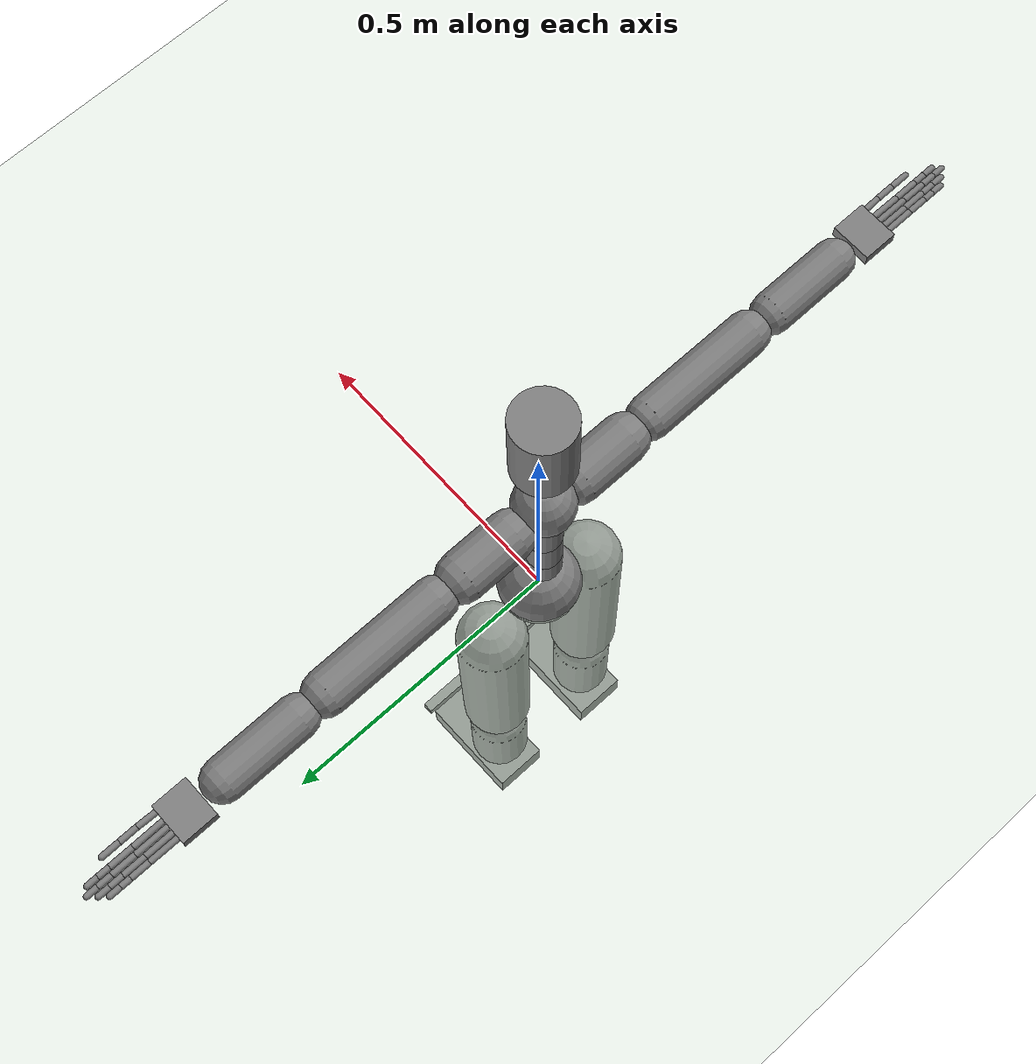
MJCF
<!-- change the damping from 50 to 500 -->
<mujoco model="humanoid">
  <compiler coordinate="local"/>
  <statistic extent="2" center="0 0 1"/>
  <option timestep="0.00555"/>
  <default>
    <motor ctrlrange="-1 1" ctrllimited="true"/>
    <geom type="capsule" condim="1" friction="1.0 0.05 0.05" solimp=".9 .99 .003" solref=".015 1"/>
    <joint type="hinge" damping="0.1" stiffness="5" armature=".007" limited="true" solimplimit="0 .99 .01"/>
    <site size=".04" group="3"/>
    <default class="force-torque">
      <site type="box" size=".01 .01 .02" rgba="1 0 0 1"/>
    </default>
    <default class="touch">
      <site type="capsule" rgba="0 0 1 .3"/>
    </default>
  </default>
  <asset>
    <texture type="skybox" builtin="gradient" rgb1=".4 .5 .6" rgb2="0 0 0" width="100" height="100"/>
    <texture builtin="flat" height="1278" mark="cross" markrgb="1 1 1" name="texgeom" random="0.01" rgb1="0.8 0.6 0.4" rgb2="0.8 0.6 0.4" type="cube" width="127"/>
    <texture builtin="checker" height="100" name="texplane" rgb1="0 0 0" rgb2="0.8 0.8 0.8" type="2d" width="100"/>
    <material name="MatPlane" reflectance="0.5" shininess="1" specular="1" texrepeat="60 60" texture="texplane"/>
    <material name="geom" texture="texgeom" texuniform="true"/>
  </asset>
  <worldbody>
    <light cutoff="100" diffuse="1 1 1" dir="-0 0 -1.3" directional="true" exponent="1" pos="0 0 1.3" specular=".1 .1 .1"/>
    <geom conaffinity="1" condim="3" name="floor" pos="0 0 0" rgba="0.8 0.9 0.8 1" size="100 100 .2" type="plane" material="MatPlane"/>
    <body name="pHipOrigin" pos="0 0 0">
      <freejoint name="pHipOrigin"/>
      <geom type="sphere" contype="1" conaffinity="1" density="4629.6296296296305" size="0.07011" pos="0.0000 0.0000 -0.0000"/>
      <body name="jL5S1" pos="-0.010019413241633527 0.0 0.09017446492318638">
        <geom type="capsule" contype="1" conaffinity="1" density="1000" fromto="0 0 0.02 0.0 0.0 0.0697084590792656" size="0.03"/>
        <joint name="jL5S1_x" type="hinge" pos="0 0 0" axis="1 0 0" stiffness="500" damping="500" armature="0.02" range="-180.0000 180.0000"/>
        <joint name="jL5S1_y" type="hinge" pos="0 0 0" axis="0 1 0" stiffness="500" damping="500" armature="0.02" range="-180.0000 180.0000"/>
        <joint name="jL5S1_z" type="hinge" pos="0 0 0" axis="0 0 1" stiffness="500" damping="500" armature="0.02" range="-180.0000 180.0000"/>
        <body name="jL4L3" pos="0.0 0.0 0.0697084590792656">
          <geom type="capsule" contype="1" conaffinity="1" density="1000" fromto="0 0 0 -0.0005771743308231759 0.0 0.07481202545659797" size="0.03"/>
          <joint name="jL4L3_x" type="hinge" pos="0 0 0" axis="1 0 0" stiffness="500" damping="500" armature="0.02" range="-180.0000 180.0000"/>
          <joint name="jL4L3_y" type="hinge" pos="0 0 0" axis="0 1 0" stiffness="500" damping="500" armature="0.02" range="-180.0000 180.0000"/>
          <joint name="jL4L3_z" type="hinge" pos="0 0 0" axis="0 0 1" stiffness="500" damping="500" armature="0.02" range="-180.0000 180.0000"/>
          <body name="jL1T12" pos="-0.0005771743308231759 0.0 0.07481202545659797">
            <geom type="capsule" contype="1" conaffinity="1" density="1000" fromto="0 0 0 -0.0006236666429982336 0.0 0.08068111677066203" size="0.03"/>
            <joint name="jL1T12_x" type="hinge" pos="0 0 0" axis="1 0 0" stiffness="500" damping="500" armature="0.02" range="-180.0000 180.0000"/>
            <joint name="jL1T12_y" type="hinge" pos="0 0 0" axis="0 1 0" stiffness="500" damping="500" armature="0.02" range="-180.0000 180.0000"/>
            <joint name="jL1T12_z" type="hinge" pos="0 0 0" axis="0 0 1" stiffness="500" damping="500" armature="0.02" range="-180.0000 180.0000"/>
            <body name="jT9T8" pos="-0.0006236666429982336 0.0 0.08068111677066203">
              <geom type="sphere" contype="1" conaffinity="1" density="1000" size="0.05011" pos="0.0000 0.0000 0.050000"/>
              <joint name="jT9T8_x" type="hinge" pos="0 0 0" axis="1 0 0" stiffness="500" damping="500" armature="0.02" range="-180.0000 180.0000"/>
              <joint name="jT9T8_y" type="hinge" pos="0 0 0" axis="0 1 0" stiffness="500" damping="500" armature="0.02" range="-180.0000 180.0000"/>
              <joint name="jT9T8_z" type="hinge" pos="0 0 0" axis="0 0 1" stiffness="500" damping="500" armature="0.02" range="-180.0000 180.0000"/>
              <body name="jT1C7" pos="0.0 0.0 0.11273500323295593">
                <geom type="capsule" contype="1" conaffinity="1" density="1000" fromto="0 0 0.03 0.0009912336654285465 0.0 0.08401980345166482" size="0.02"/>
                <joint name="jT1C7_x" type="hinge" pos="0 0 0" axis="1 0 0" stiffness="500" damping="500" armature="0.02" range="-180.0000 180.0000"/>
                <joint name="jT1C7_y" type="hinge" pos="0 0 0" axis="0 1 0" stiffness="500" damping="500" armature="0.02" range="-180.0000 180.0000"/>
                <joint name="jT1C7_z" type="hinge" pos="0 0 0" axis="0 0 1" stiffness="500" damping="500" armature="0.02" range="-180.0000 180.0000"/>
                <body name="jC1Head" pos="0.0009912336654285465 0.0 0.08401980345166482">
                  <geom type="cylinder" contype="1" conaffinity="1" density="1000" fromto="0 0 0 0 0 0.15" size="0.05"/>
                  <joint name="jC1Head_x" type="hinge" pos="0 0 0" axis="1 0 0" stiffness="500" damping="500" armature="0.02" range="-180.0000 180.0000"/>
                  <joint name="jC1Head_y" type="hinge" pos="0 0 0" axis="0 1 0" stiffness="500" damping="500" armature="0.02" range="-180.0000 180.0000"/>
                  <joint name="jC1Head_z" type="hinge" pos="0 0 0" axis="0 0 1" stiffness="500" damping="500" armature="0.02" range="-180.0000 180.0000"/>
                </body>
              </body>
              <body name="jRightT4Shoulder" pos="0.0 -0.01534223468700664 0.037407735515347">
                <geom type="capsule" contype="1" conaffinity="1" density="1000" fromto="0 -0.05 0 0.0 -0.14461944997310638 0.0" size="0.04"/>
                <joint name="jRightT4Shoulder_x" type="hinge" pos="0 0 0" axis="1 0 0" stiffness="500" damping="500" armature="0.02" range="-180.0000 180.0000"/>
                <joint name="jRightT4Shoulder_y" type="hinge" pos="0 0 0" axis="0 1 0" stiffness="500" damping="500" armature="0.02" range="-180.0000 180.0000"/>
                <joint name="jRightT4Shoulder_z" type="hinge" pos="0 0 0" axis="0 0 1" stiffness="500" damping="500" armature="0.02" range="-180.0000 180.0000"/>
                <body name="jRightShoulder" pos="0.0 -0.14461944997310638 0.0">
                  <geom type="capsule" contype="1" conaffinity="1" density="1000" fromto="0 -0.05 0 0.0 -0.2542521357536316 0.0" size="0.036"/>
                  <joint name="jRightShoulder_x" type="hinge" pos="0 0 0" axis="1 0 0" stiffness="500" damping="500" armature="0.02" range="-180.0000 180.0000"/>
                  <joint name="jRightShoulder_y" type="hinge" pos="0 0 0" axis="0 1 0" stiffness="500" damping="500" armature="0.02" range="-180.0000 180.0000"/>
                  <joint name="jRightShoulder_z" type="hinge" pos="0 0 0" axis="0 0 1" stiffness="500" damping="500" armature="0.02" range="-180.0000 180.0000"/>
                  <body name="jRightElbow" pos="0.0 -0.2542521357536316 0.0">
                    <geom type="capsule" contype="1" conaffinity="1" density="1000" fromto="0 -0.05 0 0.0001003442194109657 -0.18331441798502066 0.0" size="0.034"/>
                    <joint name="jRightElbow_x" type="hinge" pos="0 0 0" axis="1 0 0" stiffness="500" damping="500" armature="0.02" range="-180.0000 180.0000"/>
                    <joint name="jRightElbow_y" type="hinge" pos="0 0 0" axis="0 1 0" stiffness="500" damping="500" armature="0.02" range="-180.0000 180.0000"/>
                    <joint name="jRightElbow_z" type="hinge" pos="0 0 0" axis="0 0 1" stiffness="500" damping="500" armature="0.02" range="-180.0000 180.0000"/>
                    <body name="jRightWrist" pos="0.0001003442194109657 -0.24931441798502066 0.0">
                      <geom density="1000" type="box" pos="0 0 0" size="0.035 0.03 0.01" quat="1.0 0 0 0"/>
                      <joint name="jRightWrist_x" type="hinge" pos="0 0 0" axis="1 0 0" stiffness="500" damping="500" armature="0.02" range="-180.0000 180.0000"/>
                      <joint name="jRightWrist_y" type="hinge" pos="0 0 0" axis="0 1 0" stiffness="500" damping="500" armature="0.02" range="-180.0000 180.0000"/>
                      <joint name="jRightWrist_z" type="hinge" pos="0 0 0" axis="0 0 1" stiffness="500" damping="500" armature="0.02" range="-180.0000 180.0000"/>
                      <body name="jRightFirstCMC" pos="0.027596196 -0.026452502 -0.0012497246">
                        <geom type="capsule" contype="1" conaffinity="1" density="1000" fromto="0 0 0 0.001238565775565803 -0.034951504319906235 0.0007385230273939669" size="0.005"/>
                        <joint name="jRightFirstCMC_x" type="hinge" pos="0 0 0" axis="1 0 0" stiffness="500" damping="500" armature="0.02" range="-180.0000 180.0000"/>
                        <joint name="jRightFirstCMC_y" type="hinge" pos="0 0 0" axis="0 1 0" stiffness="500" damping="500" armature="0.02" range="-180.0000 180.0000"/>
                        <joint name="jRightFirstCMC_z" type="hinge" pos="0 0 0" axis="0 0 1" stiffness="500" damping="500" armature="0.02" range="-180.0000 180.0000"/>
                        <body name="jRightFirstMCP" pos="0.0012385658 -0.034951504 0.000738523">
                          <geom type="capsule" contype="1" conaffinity="1" density="1000" fromto="0 0 0 0.0 -0.030732087790966034 0.0" size="0.005"/>
                          <joint name="jRightFirstMCP_x" type="hinge" pos="0 0 0" axis="1 0 0" stiffness="500" damping="500" armature="0.02" range="-180.0000 180.0000"/>
                          <joint name="jRightFirstMCP_y" type="hinge" pos="0 0 0" axis="0 1 0" stiffness="500" damping="500" armature="0.02" range="-180.0000 180.0000"/>
                          <joint name="jRightFirstMCP_z" type="hinge" pos="0 0 0" axis="0 0 1" stiffness="500" damping="500" armature="0.02" range="-180.0000 180.0000"/>
                          <body name="jRightIP" pos="0.0 -0.030732088 0.0">
                            <geom type="capsule" contype="1" conaffinity="1" density="1000" fromto="0 0 0 0.0 -0.03037111461162567 0.0" size="0.005"/>
                            <joint name="jRightIP_x" type="hinge" pos="0 0 0" axis="1 0 0" stiffness="500" damping="500" armature="0.02" range="-180.0000 180.0000"/>
                            <joint name="jRightIP_y" type="hinge" pos="0 0 0" axis="0 1 0" stiffness="500" damping="500" armature="0.02" range="-180.0000 180.0000"/>
                            <joint name="jRightIP_z" type="hinge" pos="0 0 0" axis="0 0 1" stiffness="500" damping="500" armature="0.02" range="-180.0000 180.0000"/>
                          </body>
                        </body>
                      </body>
                      <body name="jRightSecondCMC" pos="0.01055047 -0.030825134 -0.00053766515">
                        <geom type="capsule" contype="1" conaffinity="1" density="1000" fromto="0 0 0 -0.0003300016396678984 -0.05263279005885124 -0.0005459764506667852" size="0.005"/>
                        <joint name="jRightSecondCMC_x" type="hinge" pos="0 0 0" axis="1 0 0" stiffness="500" damping="500" armature="0.02" range="-180.0000 180.0000"/>
                        <joint name="jRightSecondCMC_y" type="hinge" pos="0 0 0" axis="0 1 0" stiffness="500" damping="500" armature="0.02" range="-180.0000 180.0000"/>
                        <joint name="jRightSecondCMC_z" type="hinge" pos="0 0 0" axis="0 0 1" stiffness="500" damping="500" armature="0.02" range="-180.0000 180.0000"/>
                        <body name="jRightSecondMCP" pos="-0.00033000164 -0.05263279 -0.00054597645">
                          <geom type="capsule" contype="1" conaffinity="1" density="1000" fromto="0 0 0 0.0 -0.04028815031051636 0.0" size="0.005"/>
                          <joint name="jRightSecondMCP_x" type="hinge" pos="0 0 0" axis="1 0 0" stiffness="500" damping="500" armature="0.02" range="-180.0000 180.0000"/>
                          <joint name="jRightSecondMCP_y" type="hinge" pos="0 0 0" axis="0 1 0" stiffness="500" damping="500" armature="0.02" range="-180.0000 180.0000"/>
                          <joint name="jRightSecondMCP_z" type="hinge" pos="0 0 0" axis="0 0 1" stiffness="500" damping="500" armature="0.02" range="-180.0000 180.0000"/>
                          <body name="jRightSecondPIP" pos="0.0 -0.04028815 0.0">
                            <geom type="capsule" contype="1" conaffinity="1" density="1000" fromto="0 0 0 0.0 -0.020234927535057068 0.0" size="0.005"/>
                            <joint name="jRightSecondPIP_x" type="hinge" pos="0 0 0" axis="1 0 0" stiffness="500" damping="500" armature="0.02" range="-180.0000 180.0000"/>
                            <joint name="jRightSecondPIP_y" type="hinge" pos="0 0 0" axis="0 1 0" stiffness="500" damping="500" armature="0.02" range="-180.0000 180.0000"/>
                            <joint name="jRightSecondPIP_z" type="hinge" pos="0 0 0" axis="0 0 1" stiffness="500" damping="500" armature="0.02" range="-180.0000 180.0000"/>
                            <body name="jRightSecondDIP" pos="0.0 -0.020234928 0.0">
                              <geom type="capsule" contype="1" conaffinity="1" density="1000" fromto="0 0 0 0.0 -0.018165484070777893 0.0" size="0.005"/>
                              <joint name="jRightSecondDIP_x" type="hinge" pos="0 0 0" axis="1 0 0" stiffness="500" damping="500" armature="0.02" range="-180.0000 180.0000"/>
                              <joint name="jRightSecondDIP_y" type="hinge" pos="0 0 0" axis="0 1 0" stiffness="500" damping="500" armature="0.02" range="-180.0000 180.0000"/>
                              <joint name="jRightSecondDIP_z" type="hinge" pos="0 0 0" axis="0 0 1" stiffness="500" damping="500" armature="0.02" range="-180.0000 180.0000"/>
                            </body>
                          </body>
                        </body>
                      </body>
                      <body name="jRightThirdCMC" pos="-0.00060296006 -0.03260669 0.0013708348">
                        <geom type="capsule" contype="1" conaffinity="1" density="1000" fromto="0 0 0 -0.0006617444450967014 -0.05482562631368637 0.0014915944775566459" size="0.005"/>
                        <joint name="jRightThirdCMC_x" type="hinge" pos="0 0 0" axis="1 0 0" stiffness="500" damping="500" armature="0.02" range="-180.0000 180.0000"/>
                        <joint name="jRightThirdCMC_y" type="hinge" pos="0 0 0" axis="0 1 0" stiffness="500" damping="500" armature="0.02" range="-180.0000 180.0000"/>
                        <joint name="jRightThirdCMC_z" type="hinge" pos="0 0 0" axis="0 0 1" stiffness="500" damping="500" armature="0.02" range="-180.0000 180.0000"/>
                        <body name="jRightThirdMCP" pos="-0.00066174445 -0.054825626 0.0014915945">
                          <geom type="capsule" contype="1" conaffinity="1" density="1000" fromto="0 0 0 0.0 -0.04051179438829422 0.0" size="0.005"/>
                          <joint name="jRightThirdMCP_x" type="hinge" pos="0 0 0" axis="1 0 0" stiffness="500" damping="500" armature="0.02" range="-180.0000 180.0000"/>
                          <joint name="jRightThirdMCP_y" type="hinge" pos="0 0 0" axis="0 1 0" stiffness="500" damping="500" armature="0.02" range="-180.0000 180.0000"/>
                          <joint name="jRightThirdMCP_z" type="hinge" pos="0 0 0" axis="0 0 1" stiffness="500" damping="500" armature="0.02" range="-180.0000 180.0000"/>
                          <body name="jRightThirdPIP" pos="0.0 -0.040511794 0.0">
                            <geom type="capsule" contype="1" conaffinity="1" density="1000" fromto="0 0 0 0.0 -0.02395567297935486 0.0" size="0.005"/>
                            <joint name="jRightThirdPIP_x" type="hinge" pos="0 0 0" axis="1 0 0" stiffness="500" damping="500" armature="0.02" range="-180.0000 180.0000"/>
                            <joint name="jRightThirdPIP_y" type="hinge" pos="0 0 0" axis="0 1 0" stiffness="500" damping="500" armature="0.02" range="-180.0000 180.0000"/>
                            <joint name="jRightThirdPIP_z" type="hinge" pos="0 0 0" axis="0 0 1" stiffness="500" damping="500" armature="0.02" range="-180.0000 180.0000"/>
                            <body name="jRightThirdDIP" pos="0.0 -0.023955673 0.0">
                              <geom type="capsule" contype="1" conaffinity="1" density="1000" fromto="0 0 0 0.0 -0.018981516361236572 0.0" size="0.005"/>
                              <joint name="jRightThirdDIP_x" type="hinge" pos="0 0 0" axis="1 0 0" stiffness="500" damping="500" armature="0.02" range="-180.0000 180.0000"/>
                              <joint name="jRightThirdDIP_y" type="hinge" pos="0 0 0" axis="0 1 0" stiffness="500" damping="500" armature="0.02" range="-180.0000 180.0000"/>
                              <joint name="jRightThirdDIP_z" type="hinge" pos="0 0 0" axis="0 0 1" stiffness="500" damping="500" armature="0.02" range="-180.0000 180.0000"/>
                            </body>
                          </body>
                        </body>
                      </body>
                      <body name="jRightFourthCMC" pos="-0.011014258 -0.030676529 0.00072207744">
                        <geom type="capsule" contype="1" conaffinity="1" density="1000" fromto="0 0 0 -0.0003515798016451299 -0.048187438398599625 0.0007570628658868372" size="0.005"/>
                        <joint name="jRightFourthCMC_x" type="hinge" pos="0 0 0" axis="1 0 0" stiffness="500" damping="500" armature="0.02" range="-180.0000 180.0000"/>
                        <joint name="jRightFourthCMC_y" type="hinge" pos="0 0 0" axis="0 1 0" stiffness="500" damping="500" armature="0.02" range="-180.0000 180.0000"/>
                        <joint name="jRightFourthCMC_z" type="hinge" pos="0 0 0" axis="0 0 1" stiffness="500" damping="500" armature="0.02" range="-180.0000 180.0000"/>
                        <body name="jRightFourthMCP" pos="-0.0003515798 -0.04818744 0.00075706287">
                          <geom type="capsule" contype="1" conaffinity="1" density="1000" fromto="0 0 0 0.0 -0.038432247936725616 0.0" size="0.005"/>
                          <joint name="jRightFourthMCP_x" type="hinge" pos="0 0 0" axis="1 0 0" stiffness="500" damping="500" armature="0.02" range="-180.0000 180.0000"/>
                          <joint name="jRightFourthMCP_y" type="hinge" pos="0 0 0" axis="0 1 0" stiffness="500" damping="500" armature="0.02" range="-180.0000 180.0000"/>
                          <joint name="jRightFourthMCP_z" type="hinge" pos="0 0 0" axis="0 0 1" stiffness="500" damping="500" armature="0.02" range="-180.0000 180.0000"/>
                          <body name="jRightFourthPIP" pos="0.0 -0.038432248 0.0">
                            <geom type="capsule" contype="1" conaffinity="1" density="1000" fromto="0 0 0 0.0 -0.022811129689216614 0.0" size="0.005"/>
                            <joint name="jRightFourthPIP_x" type="hinge" pos="0 0 0" axis="1 0 0" stiffness="500" damping="500" armature="0.02" range="-180.0000 180.0000"/>
                            <joint name="jRightFourthPIP_y" type="hinge" pos="0 0 0" axis="0 1 0" stiffness="500" damping="500" armature="0.02" range="-180.0000 180.0000"/>
                            <joint name="jRightFourthPIP_z" type="hinge" pos="0 0 0" axis="0 0 1" stiffness="500" damping="500" armature="0.02" range="-180.0000 180.0000"/>
                            <body name="jRightFourthDIP" pos="0.0 -0.02281113 0.0">
                              <geom type="capsule" contype="1" conaffinity="1" density="1000" fromto="0 0 0 0.0 -0.019249245524406433 0.0" size="0.005"/>
                              <joint name="jRightFourthDIP_x" type="hinge" pos="0 0 0" axis="1 0 0" stiffness="500" damping="500" armature="0.02" range="-180.0000 180.0000"/>
                              <joint name="jRightFourthDIP_y" type="hinge" pos="0 0 0" axis="0 1 0" stiffness="500" damping="500" armature="0.02" range="-180.0000 180.0000"/>
                              <joint name="jRightFourthDIP_z" type="hinge" pos="0 0 0" axis="0 0 1" stiffness="500" damping="500" armature="0.02" range="-180.0000 180.0000"/>
                            </body>
                          </body>
                        </body>
                      </body>
                      <body name="jRightFifthCMC" pos="-0.021016091 -0.029283525 0.0005776699">
                        <geom type="capsule" contype="1" conaffinity="1" density="1000" fromto="0 0 0 -7.462973371730186e-06 -0.05052673816680908 0.0006953107658773661" size="0.005"/>
                        <joint name="jRightFifthCMC_x" type="hinge" pos="0 0 0" axis="1 0 0" stiffness="500" damping="500" armature="0.02" range="-180.0000 180.0000"/>
                        <joint name="jRightFifthCMC_y" type="hinge" pos="0 0 0" axis="0 1 0" stiffness="500" damping="500" armature="0.02" range="-180.0000 180.0000"/>
                        <joint name="jRightFifthCMC_z" type="hinge" pos="0 0 0" axis="0 0 1" stiffness="500" damping="500" armature="0.02" range="-180.0000 180.0000"/>
                        <body name="jRightFifthMCP" pos="-7.4629734e-06 -0.05052674 0.00069531077">
                          <geom type="capsule" contype="1" conaffinity="1" density="1000" fromto="0 0 0 0.0 -0.0321449339389801 0.0" size="0.005"/>
                          <joint name="jRightFifthMCP_x" type="hinge" pos="0 0 0" axis="1 0 0" stiffness="500" damping="500" armature="0.02" range="-180.0000 180.0000"/>
                          <joint name="jRightFifthMCP_y" type="hinge" pos="0 0 0" axis="0 1 0" stiffness="500" damping="500" armature="0.02" range="-180.0000 180.0000"/>
                          <joint name="jRightFifthMCP_z" type="hinge" pos="0 0 0" axis="0 0 1" stiffness="500" damping="500" armature="0.02" range="-180.0000 180.0000"/>
                          <body name="jRightFifthPIP" pos="0.0 -0.032144934 0.0">
                            <geom type="capsule" contype="1" conaffinity="1" density="1000" fromto="0 0 0 0.0 -0.01745578646659851 0.0" size="0.005"/>
                            <joint name="jRightFifthPIP_x" type="hinge" pos="0 0 0" axis="1 0 0" stiffness="500" damping="500" armature="0.02" range="-180.0000 180.0000"/>
                            <joint name="jRightFifthPIP_y" type="hinge" pos="0 0 0" axis="0 1 0" stiffness="500" damping="500" armature="0.02" range="-180.0000 180.0000"/>
                            <joint name="jRightFifthPIP_z" type="hinge" pos="0 0 0" axis="0 0 1" stiffness="500" damping="500" armature="0.02" range="-180.0000 180.0000"/>
                            <body name="jRightFifthDIP" pos="0.0 -0.017455786 0.0">
                              <geom type="capsule" contype="1" conaffinity="1" density="1000" fromto="0 0 0 0.0 -0.018519103527069092 0.0" size="0.005"/>
                              <joint name="jRightFifthDIP_x" type="hinge" pos="0 0 0" axis="1 0 0" stiffness="500" damping="500" armature="0.02" range="-180.0000 180.0000"/>
                              <joint name="jRightFifthDIP_y" type="hinge" pos="0 0 0" axis="0 1 0" stiffness="500" damping="500" armature="0.02" range="-180.0000 180.0000"/>
                              <joint name="jRightFifthDIP_z" type="hinge" pos="0 0 0" axis="0 0 1" stiffness="500" damping="500" armature="0.02" range="-180.0000 180.0000"/>
                            </body>
                          </body>
                        </body>
                      </body>
                    </body>
                  </body>
                </body>
              </body>
              <body name="jLeftT4Shoulder" pos="0.0 0.015389478798290689 0.03752292702790208">
                <geom type="capsule" contype="1" conaffinity="1" density="1000" fromto="0 0.05 0 0.0 0.14523376524448395 0.0" size="0.04"/>
                <joint name="jLeftT4Shoulder_x" type="hinge" pos="0 0 0" axis="1 0 0" stiffness="500" damping="500" armature="0.02" range="-180.0000 180.0000"/>
                <joint name="jLeftT4Shoulder_y" type="hinge" pos="0 0 0" axis="0 1 0" stiffness="500" damping="500" armature="0.02" range="-180.0000 180.0000"/>
                <joint name="jLeftT4Shoulder_z" type="hinge" pos="0 0 0" axis="0 0 1" stiffness="500" damping="500" armature="0.02" range="-180.0000 180.0000"/>
                <body name="jLeftShoulder" pos="0.0 0.14523376524448395 0.0">
                  <geom type="capsule" contype="1" conaffinity="1" density="1000" fromto="0 0.05 0 0.0 0.25449681282043457 0.0" size="0.036"/>
                  <joint name="jLeftShoulder_x" type="hinge" pos="0 0 0" axis="1 0 0" stiffness="500" damping="500" armature="0.02" range="-180.0000 180.0000"/>
                  <joint name="jLeftShoulder_y" type="hinge" pos="0 0 0" axis="0 1 0" stiffness="500" damping="500" armature="0.02" range="-180.0000 180.0000"/>
                  <joint name="jLeftShoulder_z" type="hinge" pos="0 0 0" axis="0 0 1" stiffness="500" damping="500" armature="0.02" range="-180.0000 180.0000"/>
                  <body name="jLeftElbow" pos="0.0 0.25449681282043457 0.0">
                    <geom type="capsule" contype="1" conaffinity="1" density="1000" fromto="0 0.05 0 0.00010047354194845589 0.1836357316925364 0.0" size="0.034"/>
                    <joint name="jLeftElbow_x" type="hinge" pos="0 0 0" axis="1 0 0" stiffness="500" damping="500" armature="0.02" range="-180.0000 180.0000"/>
                    <joint name="jLeftElbow_y" type="hinge" pos="0 0 0" axis="0 1 0" stiffness="500" damping="500" armature="0.02" range="-180.0000 180.0000"/>
                    <joint name="jLeftElbow_z" type="hinge" pos="0 0 0" axis="0 0 1" stiffness="500" damping="500" armature="0.02" range="-180.0000 180.0000"/>
                    <body name="jLeftWrist" pos="0.00010047354194845589 0.24963573169253642 0.0">
                      <geom density="1000" type="box" pos="0 0 0" size="0.035 0.03 0.01" quat="1.0 0 0 0"/>
                      <joint name="jLeftWrist_x" type="hinge" pos="0 0 0" axis="1 0 0" stiffness="500" damping="500" armature="0.02" range="-180.0000 180.0000"/>
                      <joint name="jLeftWrist_y" type="hinge" pos="0 0 0" axis="0 1 0" stiffness="500" damping="500" armature="0.02" range="-180.0000 180.0000"/>
                      <joint name="jLeftWrist_z" type="hinge" pos="0 0 0" axis="0 0 1" stiffness="500" damping="500" armature="0.02" range="-180.0000 180.0000"/>
                      <body name="jLeftFirstCMC" pos="0.027010176 0.027073963 -0.0012088865">
                        <geom type="capsule" contype="1" conaffinity="1" density="1000" fromto="0 0 0 0.0012266348348930478 0.03495071828365326 0.0007197191589511931" size="0.005"/>
                        <joint name="jLeftFirstCMC_x" type="hinge" pos="0 0 0" axis="1 0 0" stiffness="500" damping="500" armature="0.02" range="-180.0000 180.0000"/>
                        <joint name="jLeftFirstCMC_y" type="hinge" pos="0 0 0" axis="0 1 0" stiffness="500" damping="500" armature="0.02" range="-180.0000 180.0000"/>
                        <joint name="jLeftFirstCMC_z" type="hinge" pos="0 0 0" axis="0 0 1" stiffness="500" damping="500" armature="0.02" range="-180.0000 180.0000"/>
                        <body name="jLeftFirstMCP" pos="0.0012266348 0.03495072 0.00071971916">
                          <geom type="capsule" contype="1" conaffinity="1" density="1000" fromto="0 0 0 0.0 0.030732087790966034 0.0" size="0.005"/>
                          <joint name="jLeftFirstMCP_x" type="hinge" pos="0 0 0" axis="1 0 0" stiffness="500" damping="500" armature="0.02" range="-180.0000 180.0000"/>
                          <joint name="jLeftFirstMCP_y" type="hinge" pos="0 0 0" axis="0 1 0" stiffness="500" damping="500" armature="0.02" range="-180.0000 180.0000"/>
                          <joint name="jLeftFirstMCP_z" type="hinge" pos="0 0 0" axis="0 0 1" stiffness="500" damping="500" armature="0.02" range="-180.0000 180.0000"/>
                          <body name="jLeftIP" pos="0.0 0.030732088 0.0">
                            <geom type="capsule" contype="1" conaffinity="1" density="1000" fromto="0 0 0 0.0 0.03037111461162567 0.0" size="0.005"/>
                            <joint name="jLeftIP_x" type="hinge" pos="0 0 0" axis="1 0 0" stiffness="500" damping="500" armature="0.02" range="-180.0000 180.0000"/>
                            <joint name="jLeftIP_y" type="hinge" pos="0 0 0" axis="0 1 0" stiffness="500" damping="500" armature="0.02" range="-180.0000 180.0000"/>
                            <joint name="jLeftIP_z" type="hinge" pos="0 0 0" axis="0 0 1" stiffness="500" damping="500" armature="0.02" range="-180.0000 180.0000"/>
                          </body>
                        </body>
                      </body>
                      <body name="jLeftSecondCMC" pos="0.010671994 0.030768417 -0.0005421052">
                        <geom type="capsule" contype="1" conaffinity="1" density="1000" fromto="0 0 0 -0.00028773958911187947 0.0526338666677475 -0.0005527211469598114" size="0.005"/>
                        <joint name="jLeftSecondCMC_x" type="hinge" pos="0 0 0" axis="1 0 0" stiffness="500" damping="500" armature="0.02" range="-180.0000 180.0000"/>
                        <joint name="jLeftSecondCMC_y" type="hinge" pos="0 0 0" axis="0 1 0" stiffness="500" damping="500" armature="0.02" range="-180.0000 180.0000"/>
                        <joint name="jLeftSecondCMC_z" type="hinge" pos="0 0 0" axis="0 0 1" stiffness="500" damping="500" armature="0.02" range="-180.0000 180.0000"/>
                        <body name="jLeftSecondMCP" pos="-0.0002877396 0.052633867 -0.00055272115">
                          <geom type="capsule" contype="1" conaffinity="1" density="1000" fromto="0 0 0 0.0 0.04028815031051636 0.0" size="0.005"/>
                          <joint name="jLeftSecondMCP_x" type="hinge" pos="0 0 0" axis="1 0 0" stiffness="500" damping="500" armature="0.02" range="-180.0000 180.0000"/>
                          <joint name="jLeftSecondMCP_y" type="hinge" pos="0 0 0" axis="0 1 0" stiffness="500" damping="500" armature="0.02" range="-180.0000 180.0000"/>
                          <joint name="jLeftSecondMCP_z" type="hinge" pos="0 0 0" axis="0 0 1" stiffness="500" damping="500" armature="0.02" range="-180.0000 180.0000"/>
                          <body name="jLeftSecondPIP" pos="0.0 0.04028815 0.0">
                            <geom type="capsule" contype="1" conaffinity="1" density="1000" fromto="0 0 0 0.0 0.020234927535057068 0.0" size="0.005"/>
                            <joint name="jLeftSecondPIP_x" type="hinge" pos="0 0 0" axis="1 0 0" stiffness="500" damping="500" armature="0.02" range="-180.0000 180.0000"/>
                            <joint name="jLeftSecondPIP_y" type="hinge" pos="0 0 0" axis="0 1 0" stiffness="500" damping="500" armature="0.02" range="-180.0000 180.0000"/>
                            <joint name="jLeftSecondPIP_z" type="hinge" pos="0 0 0" axis="0 0 1" stiffness="500" damping="500" armature="0.02" range="-180.0000 180.0000"/>
                            <body name="jLeftSecondDIP" pos="0.0 0.020234928 0.0">
                              <geom type="capsule" contype="1" conaffinity="1" density="1000" fromto="0 0 0 0.0 0.018165484070777893 0.0" size="0.005"/>
                              <joint name="jLeftSecondDIP_x" type="hinge" pos="0 0 0" axis="1 0 0" stiffness="500" damping="500" armature="0.02" range="-180.0000 180.0000"/>
                              <joint name="jLeftSecondDIP_y" type="hinge" pos="0 0 0" axis="0 1 0" stiffness="500" damping="500" armature="0.02" range="-180.0000 180.0000"/>
                              <joint name="jLeftSecondDIP_z" type="hinge" pos="0 0 0" axis="0 0 1" stiffness="500" damping="500" armature="0.02" range="-180.0000 180.0000"/>
                            </body>
                          </body>
                        </body>
                      </body>
                      <body name="jLeftThirdCMC" pos="-0.00060649996 0.03260962 0.0013251399">
                        <geom type="capsule" contype="1" conaffinity="1" density="1000" fromto="0 0 0 -0.000667085696477443 0.05482669174671173 0.0014616077532991767" size="0.005"/>
                        <joint name="jLeftThirdCMC_x" type="hinge" pos="0 0 0" axis="1 0 0" stiffness="500" damping="500" armature="0.02" range="-180.0000 180.0000"/>
                        <joint name="jLeftThirdCMC_y" type="hinge" pos="0 0 0" axis="0 1 0" stiffness="500" damping="500" armature="0.02" range="-180.0000 180.0000"/>
                        <joint name="jLeftThirdCMC_z" type="hinge" pos="0 0 0" axis="0 0 1" stiffness="500" damping="500" armature="0.02" range="-180.0000 180.0000"/>
                        <body name="jLeftThirdMCP" pos="-0.0006670857 0.05482669 0.0014616078">
                          <geom type="capsule" contype="1" conaffinity="1" density="1000" fromto="0 0 0 0.0 0.04051179438829422 0.0" size="0.005"/>
                          <joint name="jLeftThirdMCP_x" type="hinge" pos="0 0 0" axis="1 0 0" stiffness="500" damping="500" armature="0.02" range="-180.0000 180.0000"/>
                          <joint name="jLeftThirdMCP_y" type="hinge" pos="0 0 0" axis="0 1 0" stiffness="500" damping="500" armature="0.02" range="-180.0000 180.0000"/>
                          <joint name="jLeftThirdMCP_z" type="hinge" pos="0 0 0" axis="0 0 1" stiffness="500" damping="500" armature="0.02" range="-180.0000 180.0000"/>
                          <body name="jLeftThirdPIP" pos="0.0 0.040511794 0.0">
                            <geom type="capsule" contype="1" conaffinity="1" density="1000" fromto="0 0 0 0.0 0.02395567297935486 0.0" size="0.005"/>
                            <joint name="jLeftThirdPIP_x" type="hinge" pos="0 0 0" axis="1 0 0" stiffness="500" damping="500" armature="0.02" range="-180.0000 180.0000"/>
                            <joint name="jLeftThirdPIP_y" type="hinge" pos="0 0 0" axis="0 1 0" stiffness="500" damping="500" armature="0.02" range="-180.0000 180.0000"/>
                            <joint name="jLeftThirdPIP_z" type="hinge" pos="0 0 0" axis="0 0 1" stiffness="500" damping="500" armature="0.02" range="-180.0000 180.0000"/>
                            <body name="jLeftThirdDIP" pos="0.0 0.023955673 0.0">
                              <geom type="capsule" contype="1" conaffinity="1" density="1000" fromto="0 0 0 0.0 0.018981516361236572 0.0" size="0.005"/>
                              <joint name="jLeftThirdDIP_x" type="hinge" pos="0 0 0" axis="1 0 0" stiffness="500" damping="500" armature="0.02" range="-180.0000 180.0000"/>
                              <joint name="jLeftThirdDIP_y" type="hinge" pos="0 0 0" axis="0 1 0" stiffness="500" damping="500" armature="0.02" range="-180.0000 180.0000"/>
                              <joint name="jLeftThirdDIP_z" type="hinge" pos="0 0 0" axis="0 0 1" stiffness="500" damping="500" armature="0.02" range="-180.0000 180.0000"/>
                            </body>
                          </body>
                        </body>
                      </body>
                      <body name="jLeftFourthCMC" pos="-0.011418408 0.030519614 0.00077081076">
                        <geom type="capsule" contype="1" conaffinity="1" density="1000" fromto="0 0 0 -0.0003780915285460651 0.048184677958488464 0.0008006810676306486" size="0.005"/>
                        <joint name="jLeftFourthCMC_x" type="hinge" pos="0 0 0" axis="1 0 0" stiffness="500" damping="500" armature="0.02" range="-180.0000 180.0000"/>
                        <joint name="jLeftFourthCMC_y" type="hinge" pos="0 0 0" axis="0 1 0" stiffness="500" damping="500" armature="0.02" range="-180.0000 180.0000"/>
                        <joint name="jLeftFourthCMC_z" type="hinge" pos="0 0 0" axis="0 0 1" stiffness="500" damping="500" armature="0.02" range="-180.0000 180.0000"/>
                        <body name="jLeftFourthMCP" pos="-0.00037809153 0.048184678 0.00080068107">
                          <geom type="capsule" contype="1" conaffinity="1" density="1000" fromto="0 0 0 0.0 0.038432247936725616 0.0" size="0.005"/>
                          <joint name="jLeftFourthMCP_x" type="hinge" pos="0 0 0" axis="1 0 0" stiffness="500" damping="500" armature="0.02" range="-180.0000 180.0000"/>
                          <joint name="jLeftFourthMCP_y" type="hinge" pos="0 0 0" axis="0 1 0" stiffness="500" damping="500" armature="0.02" range="-180.0000 180.0000"/>
                          <joint name="jLeftFourthMCP_z" type="hinge" pos="0 0 0" axis="0 0 1" stiffness="500" damping="500" armature="0.02" range="-180.0000 180.0000"/>
                          <body name="jLeftFourthPIP" pos="0.0 0.038432248 0.0">
                            <geom type="capsule" contype="1" conaffinity="1" density="1000" fromto="0 0 0 0.0 0.022811129689216614 0.0" size="0.005"/>
                            <joint name="jLeftFourthPIP_x" type="hinge" pos="0 0 0" axis="1 0 0" stiffness="500" damping="500" armature="0.02" range="-180.0000 180.0000"/>
                            <joint name="jLeftFourthPIP_y" type="hinge" pos="0 0 0" axis="0 1 0" stiffness="500" damping="500" armature="0.02" range="-180.0000 180.0000"/>
                            <joint name="jLeftFourthPIP_z" type="hinge" pos="0 0 0" axis="0 0 1" stiffness="500" damping="500" armature="0.02" range="-180.0000 180.0000"/>
                            <body name="jLeftFourthDIP" pos="0.0 0.02281113 0.0">
                              <geom type="capsule" contype="1" conaffinity="1" density="1000" fromto="0 0 0 0.0 0.019249245524406433 0.0" size="0.005"/>
                              <joint name="jLeftFourthDIP_x" type="hinge" pos="0 0 0" axis="1 0 0" stiffness="500" damping="500" armature="0.02" range="-180.0000 180.0000"/>
                              <joint name="jLeftFourthDIP_y" type="hinge" pos="0 0 0" axis="0 1 0" stiffness="500" damping="500" armature="0.02" range="-180.0000 180.0000"/>
                              <joint name="jLeftFourthDIP_z" type="hinge" pos="0 0 0" axis="0 0 1" stiffness="500" damping="500" armature="0.02" range="-180.0000 180.0000"/>
                            </body>
                          </body>
                        </body>
                      </body>
                      <body name="jLeftFifthCMC" pos="-0.021652749 0.028820578 0.000586955">
                        <geom type="capsule" contype="1" conaffinity="1" density="1000" fromto="0 0 0 -1.4329206351249013e-05 0.05052535980939865 0.0007270281203091145" size="0.005"/>
                        <joint name="jLeftFifthCMC_x" type="hinge" pos="0 0 0" axis="1 0 0" stiffness="500" damping="500" armature="0.02" range="-180.0000 180.0000"/>
                        <joint name="jLeftFifthCMC_y" type="hinge" pos="0 0 0" axis="0 1 0" stiffness="500" damping="500" armature="0.02" range="-180.0000 180.0000"/>
                        <joint name="jLeftFifthCMC_z" type="hinge" pos="0 0 0" axis="0 0 1" stiffness="500" damping="500" armature="0.02" range="-180.0000 180.0000"/>
                        <body name="jLeftFifthMCP" pos="-1.4329206e-05 0.05052536 0.0007270281">
                          <geom type="capsule" contype="1" conaffinity="1" density="1000" fromto="0 0 0 0.0 0.0321449339389801 0.0" size="0.005"/>
                          <joint name="jLeftFifthMCP_x" type="hinge" pos="0 0 0" axis="1 0 0" stiffness="500" damping="500" armature="0.02" range="-180.0000 180.0000"/>
                          <joint name="jLeftFifthMCP_y" type="hinge" pos="0 0 0" axis="0 1 0" stiffness="500" damping="500" armature="0.02" range="-180.0000 180.0000"/>
                          <joint name="jLeftFifthMCP_z" type="hinge" pos="0 0 0" axis="0 0 1" stiffness="500" damping="500" armature="0.02" range="-180.0000 180.0000"/>
                          <body name="jLeftFifthPIP" pos="0.0 0.032144934 0.0">
                            <geom type="capsule" contype="1" conaffinity="1" density="1000" fromto="0 0 0 0.0 0.01745578646659851 0.0" size="0.005"/>
                            <joint name="jLeftFifthPIP_x" type="hinge" pos="0 0 0" axis="1 0 0" stiffness="500" damping="500" armature="0.02" range="-180.0000 180.0000"/>
                            <joint name="jLeftFifthPIP_y" type="hinge" pos="0 0 0" axis="0 1 0" stiffness="500" damping="500" armature="0.02" range="-180.0000 180.0000"/>
                            <joint name="jLeftFifthPIP_z" type="hinge" pos="0 0 0" axis="0 0 1" stiffness="500" damping="500" armature="0.02" range="-180.0000 180.0000"/>
                            <body name="jLeftFifthDIP" pos="0.0 0.017455786 0.0">
                              <geom type="capsule" contype="1" conaffinity="1" density="1000" fromto="0 0 0 0.0 0.018519103527069092 0.0" size="0.005"/>
                              <joint name="jLeftFifthDIP_x" type="hinge" pos="0 0 0" axis="1 0 0" stiffness="500" damping="500" armature="0.02" range="-180.0000 180.0000"/>
                              <joint name="jLeftFifthDIP_y" type="hinge" pos="0 0 0" axis="0 1 0" stiffness="500" damping="500" armature="0.02" range="-180.0000 180.0000"/>
                              <joint name="jLeftFifthDIP_z" type="hinge" pos="0 0 0" axis="0 0 1" stiffness="500" damping="500" armature="0.02" range="-180.0000 180.0000"/>
                            </body>
                          </body>
                        </body>
                      </body>
                    </body>
                  </body>
                </body>
              </body>
            </body>
          </body>
        </body>
      </body>
      <body name="jRightHip" pos="-0.00018006631744443355 -0.10686012594588802 0.0016210358568282542">
        <geom type="capsule" contype="1" conaffinity="1" density="2040.816327" fromto="0 0 -0.08 5.627723694674164e-05 0.0 -0.47199859816396095" size="0.0605"/>
        <joint name="jRightHip_x" type="hinge" pos="0 0 0" axis="1 0 0" stiffness="500" damping="500" armature="0.02" range="-180.0000 180.0000"/>
        <joint name="jRightHip_y" type="hinge" pos="0 0 0" axis="0 1 0" stiffness="500" damping="500" armature="0.02" range="-180.0000 180.0000"/>
        <joint name="jRightHip_z" type="hinge" pos="0 0 0" axis="0 0 1" stiffness="500" damping="500" armature="0.02" range="-180.0000 180.0000"/>
        <body name="jRightKnee" pos="5.627723694674164e-05 0.0 -0.47199859816396095">
          <geom type="capsule" contype="1" conaffinity="1" density="1234.567901" fromto="0 0 -0.1 0.00036705120864087863 0.0 -0.2610701161039771" size="0.0533"/>
          <joint name="jRightKnee_x" type="hinge" pos="0 0 0" axis="1 0 0" stiffness="500" damping="500" armature="0.02" range="-180.0000 180.0000"/>
          <joint name="jRightKnee_y" type="hinge" pos="0 0 0" axis="0 1 0" stiffness="500" damping="500" armature="0.02" range="-180.0000 180.0000"/>
          <joint name="jRightKnee_z" type="hinge" pos="0 0 0" axis="0 0 1" stiffness="500" damping="500" armature="0.02" range="-180.0000 180.0000"/>
          <body name="jRightAnkle" pos="0.00036705120864087863 0.0 -0.3250701161039771">
            <geom density="1000" type="box" pos="0.04 0 -0.03" size="0.1 0.05 0.03" quat="1.0 0 0 0"/>
            <joint name="jRightAnkle_x" type="hinge" pos="0 0 0" axis="1 0 0" stiffness="500" damping="500" armature="0.02" range="-180.0000 180.0000"/>
            <joint name="jRightAnkle_y" type="hinge" pos="0 0 0" axis="0 1 0" stiffness="500" damping="500" armature="0.02" range="-180.0000 180.0000"/>
            <joint name="jRightAnkle_z" type="hinge" pos="0 0 0" axis="0 0 1" stiffness="500" damping="500" armature="0.02" range="-180.0000 180.0000"/>
            <body name="jRightBallFoot" pos="0.1669210976616236 0.0 -0.07657689670260896">
              <geom density="1000" type="box" pos="0 0 0.02" size="0.01 0.05 0.01" quat="1.0 0 0 0"/>
              <joint name="jRightBallFoot_x" type="hinge" pos="0 0 0" axis="1 0 0" stiffness="500" damping="500" armature="0.02" range="-180.0000 180.0000"/>
              <joint name="jRightBallFoot_y" type="hinge" pos="0 0 0" axis="0 1 0" stiffness="500" damping="500" armature="0.02" range="-180.0000 180.0000"/>
              <joint name="jRightBallFoot_z" type="hinge" pos="0 0 0" axis="0 0 1" stiffness="500" damping="500" armature="0.02" range="-180.0000 180.0000"/>
            </body>
          </body>
        </body>
      </body>
      <body name="jLeftHip" pos="-0.00017639911062386642 0.1060506764719089 0.0015874785185160008">
        <geom type="capsule" contype="1" conaffinity="1" density="2040.816327" fromto="0 0 -0.08 5.6667785846883014e-05 0.0 -0.4752741415875951" size="0.0605"/>
        <joint name="jLeftHip_x" type="hinge" pos="0 0 0" axis="1 0 0" stiffness="500" damping="500" armature="0.02" range="-180.0000 180.0000"/>
        <joint name="jLeftHip_y" type="hinge" pos="0 0 0" axis="0 1 0" stiffness="500" damping="500" armature="0.02" range="-180.0000 180.0000"/>
        <joint name="jLeftHip_z" type="hinge" pos="0 0 0" axis="0 0 1" stiffness="500" damping="500" armature="0.02" range="-180.0000 180.0000"/>
        <body name="jLeftKnee" pos="5.6667785846883014e-05 0.0 -0.4752741415875951">
          <geom type="capsule" contype="1" conaffinity="1" density="1234.567901" fromto="0 0 -0.1 0.00036705120864087863 0.0 -0.2610701161039771" size="0.0533"/>
          <joint name="jLeftKnee_x" type="hinge" pos="0 0 0" axis="1 0 0" stiffness="500" damping="500" armature="0.02" range="-180.0000 180.0000"/>
          <joint name="jLeftKnee_y" type="hinge" pos="0 0 0" axis="0 1 0" stiffness="500" damping="500" armature="0.02" range="-180.0000 180.0000"/>
          <joint name="jLeftKnee_z" type="hinge" pos="0 0 0" axis="0 0 1" stiffness="500" damping="500" armature="0.02" range="-180.0000 180.0000"/>
          <body name="jLeftAnkle" pos="0.00036705120864087863 0.0 -0.3250701161039771">
            <geom density="1000" type="box" pos="0.04 0 -0.03" size="0.1 0.05 0.03" quat="1.0 0 0 0"/>
            <joint name="jLeftAnkle_x" type="hinge" pos="0 0 0" axis="1 0 0" stiffness="500" damping="500" armature="0.02" range="-180.0000 180.0000"/>
            <joint name="jLeftAnkle_y" type="hinge" pos="0 0 0" axis="0 1 0" stiffness="500" damping="500" armature="0.02" range="-180.0000 180.0000"/>
            <joint name="jLeftAnkle_z" type="hinge" pos="0 0 0" axis="0 0 1" stiffness="500" damping="500" armature="0.02" range="-180.0000 180.0000"/>
            <body name="jLeftBallFoot" pos="0.16692108411956466 0.0 -0.0765768904900399">
              <geom density="1000" type="box" pos="0 0 0.02" size="0.01 0.05 0.01" quat="1.0 0 0 0"/>
              <joint name="jLeftBallFoot_x" type="hinge" pos="0 0 0" axis="1 0 0" stiffness="500" damping="500" armature="0.02" range="-180.0000 180.0000"/>
              <joint name="jLeftBallFoot_y" type="hinge" pos="0 0 0" axis="0 1 0" stiffness="500" damping="500" armature="0.02" range="-180.0000 180.0000"/>
              <joint name="jLeftBallFoot_z" type="hinge" pos="0 0 0" axis="0 0 1" stiffness="500" damping="500" armature="0.02" range="-180.0000 180.0000"/>
            </body>
          </body>
        </body>
      </body>
    </body>
  </worldbody>
  <actuator>
    <motor name="jL5S1_x" joint="jL5S1_x" gear="500"/>
    <motor name="jL5S1_y" joint="jL5S1_y" gear="500"/>
    <motor name="jL5S1_z" joint="jL5S1_z" gear="500"/>
    <motor name="jRightHip_x" joint="jRightHip_x" gear="500"/>
    <motor name="jRightHip_y" joint="jRightHip_y" gear="500"/>
    <motor name="jRightHip_z" joint="jRightHip_z" gear="500"/>
    <motor name="jLeftHip_x" joint="jLeftHip_x" gear="500"/>
    <motor name="jLeftHip_y" joint="jLeftHip_y" gear="500"/>
    <motor name="jLeftHip_z" joint="jLeftHip_z" gear="500"/>
    <motor name="jL4L3_x" joint="jL4L3_x" gear="500"/>
    <motor name="jL4L3_y" joint="jL4L3_y" gear="500"/>
    <motor name="jL4L3_z" joint="jL4L3_z" gear="500"/>
    <motor name="jL1T12_x" joint="jL1T12_x" gear="500"/>
    <motor name="jL1T12_y" joint="jL1T12_y" gear="500"/>
    <motor name="jL1T12_z" joint="jL1T12_z" gear="500"/>
    <motor name="jT9T8_x" joint="jT9T8_x" gear="500"/>
    <motor name="jT9T8_y" joint="jT9T8_y" gear="500"/>
    <motor name="jT9T8_z" joint="jT9T8_z" gear="500"/>
    <motor name="jT1C7_x" joint="jT1C7_x" gear="500"/>
    <motor name="jT1C7_y" joint="jT1C7_y" gear="500"/>
    <motor name="jT1C7_z" joint="jT1C7_z" gear="500"/>
    <motor name="jRightT4Shoulder_x" joint="jRightT4Shoulder_x" gear="500"/>
    <motor name="jRightT4Shoulder_y" joint="jRightT4Shoulder_y" gear="500"/>
    <motor name="jRightT4Shoulder_z" joint="jRightT4Shoulder_z" gear="500"/>
    <motor name="jLeftT4Shoulder_x" joint="jLeftT4Shoulder_x" gear="500"/>
    <motor name="jLeftT4Shoulder_y" joint="jLeftT4Shoulder_y" gear="500"/>
    <motor name="jLeftT4Shoulder_z" joint="jLeftT4Shoulder_z" gear="500"/>
    <motor name="jC1Head_x" joint="jC1Head_x" gear="500"/>
    <motor name="jC1Head_y" joint="jC1Head_y" gear="500"/>
    <motor name="jC1Head_z" joint="jC1Head_z" gear="500"/>
    <motor name="jRightShoulder_x" joint="jRightShoulder_x" gear="500"/>
    <motor name="jRightShoulder_y" joint="jRightShoulder_y" gear="500"/>
    <motor name="jRightShoulder_z" joint="jRightShoulder_z" gear="500"/>
    <motor name="jRightElbow_x" joint="jRightElbow_x" gear="500"/>
    <motor name="jRightElbow_y" joint="jRightElbow_y" gear="500"/>
    <motor name="jRightElbow_z" joint="jRightElbow_z" gear="500"/>
    <motor name="jRightWrist_x" joint="jRightWrist_x" gear="500"/>
    <motor name="jRightWrist_y" joint="jRightWrist_y" gear="500"/>
    <motor name="jRightWrist_z" joint="jRightWrist_z" gear="500"/>
    <motor name="jLeftShoulder_x" joint="jLeftShoulder_x" gear="500"/>
    <motor name="jLeftShoulder_y" joint="jLeftShoulder_y" gear="500"/>
    <motor name="jLeftShoulder_z" joint="jLeftShoulder_z" gear="500"/>
    <motor name="jLeftElbow_x" joint="jLeftElbow_x" gear="500"/>
    <motor name="jLeftElbow_y" joint="jLeftElbow_y" gear="500"/>
    <motor name="jLeftElbow_z" joint="jLeftElbow_z" gear="500"/>
    <motor name="jLeftWrist_x" joint="jLeftWrist_x" gear="500"/>
    <motor name="jLeftWrist_y" joint="jLeftWrist_y" gear="500"/>
    <motor name="jLeftWrist_z" joint="jLeftWrist_z" gear="500"/>
    <motor name="jRightKnee_x" joint="jRightKnee_x" gear="500"/>
    <motor name="jRightKnee_y" joint="jRightKnee_y" gear="500"/>
    <motor name="jRightKnee_z" joint="jRightKnee_z" gear="500"/>
    <motor name="jRightAnkle_x" joint="jRightAnkle_x" gear="500"/>
    <motor name="jRightAnkle_y" joint="jRightAnkle_y" gear="500"/>
    <motor name="jRightAnkle_z" joint="jRightAnkle_z" gear="500"/>
    <motor name="jRightBallFoot_x" joint="jRightBallFoot_x" gear="500"/>
    <motor name="jRightBallFoot_y" joint="jRightBallFoot_y" gear="500"/>
    <motor name="jRightBallFoot_z" joint="jRightBallFoot_z" gear="500"/>
    <motor name="jLeftKnee_x" joint="jLeftKnee_x" gear="500"/>
    <motor name="jLeftKnee_y" joint="jLeftKnee_y" gear="500"/>
    <motor name="jLeftKnee_z" joint="jLeftKnee_z" gear="500"/>
    <motor name="jLeftAnkle_x" joint="jLeftAnkle_x" gear="500"/>
    <motor name="jLeftAnkle_y" joint="jLeftAnkle_y" gear="500"/>
    <motor name="jLeftAnkle_z" joint="jLeftAnkle_z" gear="500"/>
    <motor name="jLeftBallFoot_x" joint="jLeftBallFoot_x" gear="500"/>
    <motor name="jLeftBallFoot_y" joint="jLeftBallFoot_y" gear="500"/>
    <motor name="jLeftBallFoot_z" joint="jLeftBallFoot_z" gear="500"/>
    <motor name="jLeftFirstCMC_x" joint="jLeftFirstCMC_x" gear="500"/>
    <motor name="jLeftFirstCMC_y" joint="jLeftFirstCMC_y" gear="500"/>
    <motor name="jLeftFirstCMC_z" joint="jLeftFirstCMC_z" gear="500"/>
    <motor name="jLeftSecondCMC_x" joint="jLeftSecondCMC_x" gear="500"/>
    <motor name="jLeftSecondCMC_y" joint="jLeftSecondCMC_y" gear="500"/>
    <motor name="jLeftSecondCMC_z" joint="jLeftSecondCMC_z" gear="500"/>
    <motor name="jLeftThirdCMC_x" joint="jLeftThirdCMC_x" gear="500"/>
    <motor name="jLeftThirdCMC_y" joint="jLeftThirdCMC_y" gear="500"/>
    <motor name="jLeftThirdCMC_z" joint="jLeftThirdCMC_z" gear="500"/>
    <motor name="jLeftFourthCMC_x" joint="jLeftFourthCMC_x" gear="500"/>
    <motor name="jLeftFourthCMC_y" joint="jLeftFourthCMC_y" gear="500"/>
    <motor name="jLeftFourthCMC_z" joint="jLeftFourthCMC_z" gear="500"/>
    <motor name="jLeftFifthCMC_x" joint="jLeftFifthCMC_x" gear="500"/>
    <motor name="jLeftFifthCMC_y" joint="jLeftFifthCMC_y" gear="500"/>
    <motor name="jLeftFifthCMC_z" joint="jLeftFifthCMC_z" gear="500"/>
    <motor name="jLeftFifthMCP_x" joint="jLeftFifthMCP_x" gear="500"/>
    <motor name="jLeftFifthMCP_y" joint="jLeftFifthMCP_y" gear="500"/>
    <motor name="jLeftFifthMCP_z" joint="jLeftFifthMCP_z" gear="500"/>
    <motor name="jLeftFifthPIP_x" joint="jLeftFifthPIP_x" gear="500"/>
    <motor name="jLeftFifthPIP_y" joint="jLeftFifthPIP_y" gear="500"/>
    <motor name="jLeftFifthPIP_z" joint="jLeftFifthPIP_z" gear="500"/>
    <motor name="jLeftFifthDIP_x" joint="jLeftFifthDIP_x" gear="500"/>
    <motor name="jLeftFifthDIP_y" joint="jLeftFifthDIP_y" gear="500"/>
    <motor name="jLeftFifthDIP_z" joint="jLeftFifthDIP_z" gear="500"/>
    <motor name="jLeftFourthMCP_x" joint="jLeftFourthMCP_x" gear="500"/>
    <motor name="jLeftFourthMCP_y" joint="jLeftFourthMCP_y" gear="500"/>
    <motor name="jLeftFourthMCP_z" joint="jLeftFourthMCP_z" gear="500"/>
    <motor name="jLeftFourthPIP_x" joint="jLeftFourthPIP_x" gear="500"/>
    <motor name="jLeftFourthPIP_y" joint="jLeftFourthPIP_y" gear="500"/>
    <motor name="jLeftFourthPIP_z" joint="jLeftFourthPIP_z" gear="500"/>
    <motor name="jLeftFourthDIP_x" joint="jLeftFourthDIP_x" gear="500"/>
    <motor name="jLeftFourthDIP_y" joint="jLeftFourthDIP_y" gear="500"/>
    <motor name="jLeftFourthDIP_z" joint="jLeftFourthDIP_z" gear="500"/>
    <motor name="jLeftThirdMCP_x" joint="jLeftThirdMCP_x" gear="500"/>
    <motor name="jLeftThirdMCP_y" joint="jLeftThirdMCP_y" gear="500"/>
    <motor name="jLeftThirdMCP_z" joint="jLeftThirdMCP_z" gear="500"/>
    <motor name="jLeftThirdPIP_x" joint="jLeftThirdPIP_x" gear="500"/>
    <motor name="jLeftThirdPIP_y" joint="jLeftThirdPIP_y" gear="500"/>
    <motor name="jLeftThirdPIP_z" joint="jLeftThirdPIP_z" gear="500"/>
    <motor name="jLeftThirdDIP_x" joint="jLeftThirdDIP_x" gear="500"/>
    <motor name="jLeftThirdDIP_y" joint="jLeftThirdDIP_y" gear="500"/>
    <motor name="jLeftThirdDIP_z" joint="jLeftThirdDIP_z" gear="500"/>
    <motor name="jLeftSecondMCP_x" joint="jLeftSecondMCP_x" gear="500"/>
    <motor name="jLeftSecondMCP_y" joint="jLeftSecondMCP_y" gear="500"/>
    <motor name="jLeftSecondMCP_z" joint="jLeftSecondMCP_z" gear="500"/>
    <motor name="jLeftSecondPIP_x" joint="jLeftSecondPIP_x" gear="500"/>
    <motor name="jLeftSecondPIP_y" joint="jLeftSecondPIP_y" gear="500"/>
    <motor name="jLeftSecondPIP_z" joint="jLeftSecondPIP_z" gear="500"/>
    <motor name="jLeftSecondDIP_x" joint="jLeftSecondDIP_x" gear="500"/>
    <motor name="jLeftSecondDIP_y" joint="jLeftSecondDIP_y" gear="500"/>
    <motor name="jLeftSecondDIP_z" joint="jLeftSecondDIP_z" gear="500"/>
    <motor name="jLeftFirstMCP_x" joint="jLeftFirstMCP_x" gear="500"/>
    <motor name="jLeftFirstMCP_y" joint="jLeftFirstMCP_y" gear="500"/>
    <motor name="jLeftFirstMCP_z" joint="jLeftFirstMCP_z" gear="500"/>
    <motor name="jLeftIP_x" joint="jLeftIP_x" gear="500"/>
    <motor name="jLeftIP_y" joint="jLeftIP_y" gear="500"/>
    <motor name="jLeftIP_z" joint="jLeftIP_z" gear="500"/>
    <motor name="jRightFirstCMC_x" joint="jRightFirstCMC_x" gear="500"/>
    <motor name="jRightFirstCMC_y" joint="jRightFirstCMC_y" gear="500"/>
    <motor name="jRightFirstCMC_z" joint="jRightFirstCMC_z" gear="500"/>
    <motor name="jRightSecondCMC_x" joint="jRightSecondCMC_x" gear="500"/>
    <motor name="jRightSecondCMC_y" joint="jRightSecondCMC_y" gear="500"/>
    <motor name="jRightSecondCMC_z" joint="jRightSecondCMC_z" gear="500"/>
    <motor name="jRightThirdCMC_x" joint="jRightThirdCMC_x" gear="500"/>
    <motor name="jRightThirdCMC_y" joint="jRightThirdCMC_y" gear="500"/>
    <motor name="jRightThirdCMC_z" joint="jRightThirdCMC_z" gear="500"/>
    <motor name="jRightFourthCMC_x" joint="jRightFourthCMC_x" gear="500"/>
    <motor name="jRightFourthCMC_y" joint="jRightFourthCMC_y" gear="500"/>
    <motor name="jRightFourthCMC_z" joint="jRightFourthCMC_z" gear="500"/>
    <motor name="jRightFifthCMC_x" joint="jRightFifthCMC_x" gear="500"/>
    <motor name="jRightFifthCMC_y" joint="jRightFifthCMC_y" gear="500"/>
    <motor name="jRightFifthCMC_z" joint="jRightFifthCMC_z" gear="500"/>
    <motor name="jRightFifthMCP_x" joint="jRightFifthMCP_x" gear="500"/>
    <motor name="jRightFifthMCP_y" joint="jRightFifthMCP_y" gear="500"/>
    <motor name="jRightFifthMCP_z" joint="jRightFifthMCP_z" gear="500"/>
    <motor name="jRightFifthPIP_x" joint="jRightFifthPIP_x" gear="500"/>
    <motor name="jRightFifthPIP_y" joint="jRightFifthPIP_y" gear="500"/>
    <motor name="jRightFifthPIP_z" joint="jRightFifthPIP_z" gear="500"/>
    <motor name="jRightFifthDIP_x" joint="jRightFifthDIP_x" gear="500"/>
    <motor name="jRightFifthDIP_y" joint="jRightFifthDIP_y" gear="500"/>
    <motor name="jRightFifthDIP_z" joint="jRightFifthDIP_z" gear="500"/>
    <motor name="jRightFourthMCP_x" joint="jRightFourthMCP_x" gear="500"/>
    <motor name="jRightFourthMCP_y" joint="jRightFourthMCP_y" gear="500"/>
    <motor name="jRightFourthMCP_z" joint="jRightFourthMCP_z" gear="500"/>
    <motor name="jRightFourthPIP_x" joint="jRightFourthPIP_x" gear="500"/>
    <motor name="jRightFourthPIP_y" joint="jRightFourthPIP_y" gear="500"/>
    <motor name="jRightFourthPIP_z" joint="jRightFourthPIP_z" gear="500"/>
    <motor name="jRightFourthDIP_x" joint="jRightFourthDIP_x" gear="500"/>
    <motor name="jRightFourthDIP_y" joint="jRightFourthDIP_y" gear="500"/>
    <motor name="jRightFourthDIP_z" joint="jRightFourthDIP_z" gear="500"/>
    <motor name="jRightThirdMCP_x" joint="jRightThirdMCP_x" gear="500"/>
    <motor name="jRightThirdMCP_y" joint="jRightThirdMCP_y" gear="500"/>
    <motor name="jRightThirdMCP_z" joint="jRightThirdMCP_z" gear="500"/>
    <motor name="jRightThirdPIP_x" joint="jRightThirdPIP_x" gear="500"/>
    <motor name="jRightThirdPIP_y" joint="jRightThirdPIP_y" gear="500"/>
    <motor name="jRightThirdPIP_z" joint="jRightThirdPIP_z" gear="500"/>
    <motor name="jRightThirdDIP_x" joint="jRightThirdDIP_x" gear="500"/>
    <motor name="jRightThirdDIP_y" joint="jRightThirdDIP_y" gear="500"/>
    <motor name="jRightThirdDIP_z" joint="jRightThirdDIP_z" gear="500"/>
    <motor name="jRightSecondMCP_x" joint="jRightSecondMCP_x" gear="500"/>
    <motor name="jRightSecondMCP_y" joint="jRightSecondMCP_y" gear="500"/>
    <motor name="jRightSecondMCP_z" joint="jRightSecondMCP_z" gear="500"/>
    <motor name="jRightSecondPIP_x" joint="jRightSecondPIP_x" gear="500"/>
    <motor name="jRightSecondPIP_y" joint="jRightSecondPIP_y" gear="500"/>
    <motor name="jRightSecondPIP_z" joint="jRightSecondPIP_z" gear="500"/>
    <motor name="jRightSecondDIP_x" joint="jRightSecondDIP_x" gear="500"/>
    <motor name="jRightSecondDIP_y" joint="jRightSecondDIP_y" gear="500"/>
    <motor name="jRightSecondDIP_z" joint="jRightSecondDIP_z" gear="500"/>
    <motor name="jRightFirstMCP_x" joint="jRightFirstMCP_x" gear="500"/>
    <motor name="jRightFirstMCP_y" joint="jRightFirstMCP_y" gear="500"/>
    <motor name="jRightFirstMCP_z" joint="jRightFirstMCP_z" gear="500"/>
    <motor name="jRightIP_x" joint="jRightIP_x" gear="500"/>
    <motor name="jRightIP_y" joint="jRightIP_y" gear="500"/>
    <motor name="jRightIP_z" joint="jRightIP_z" gear="500"/>
  </actuator>
</mujoco>
